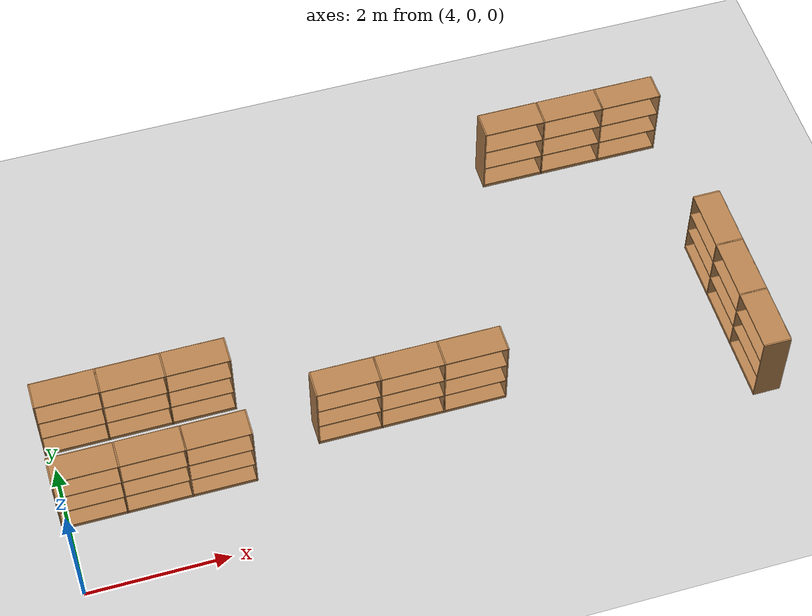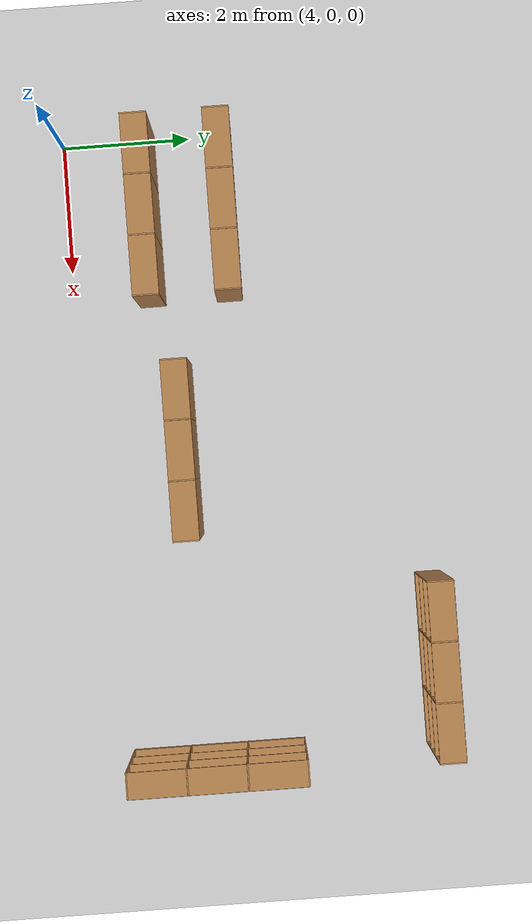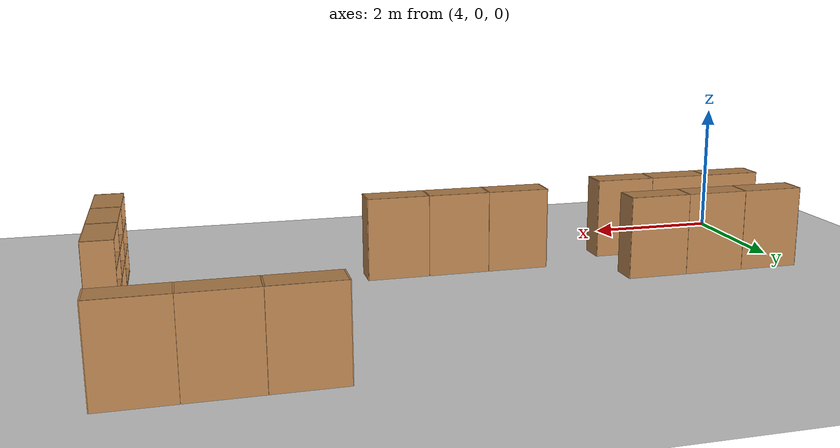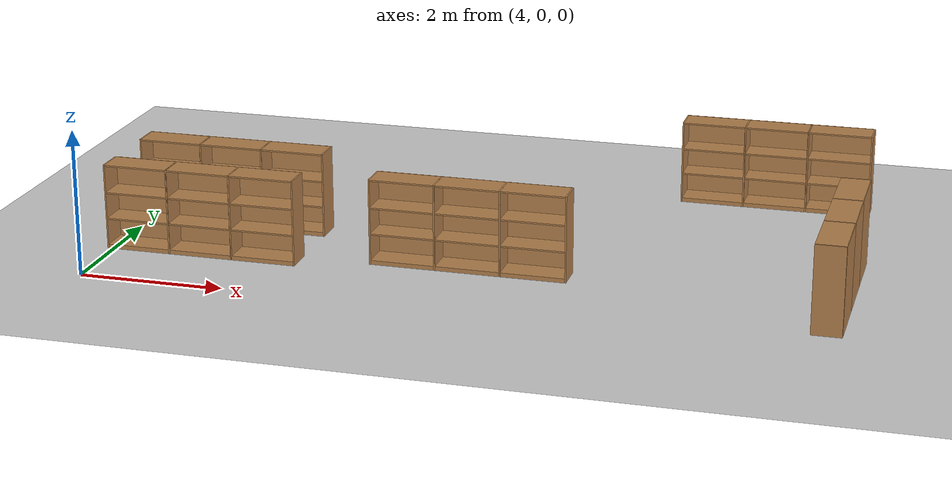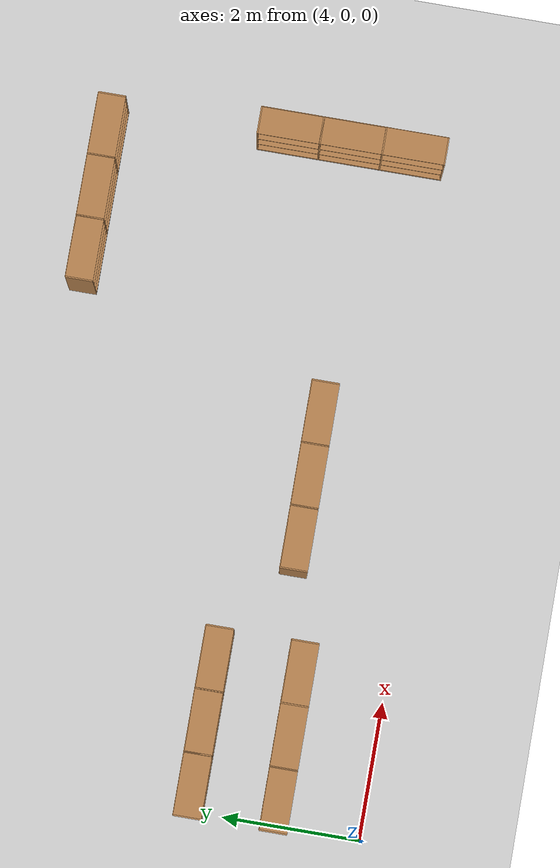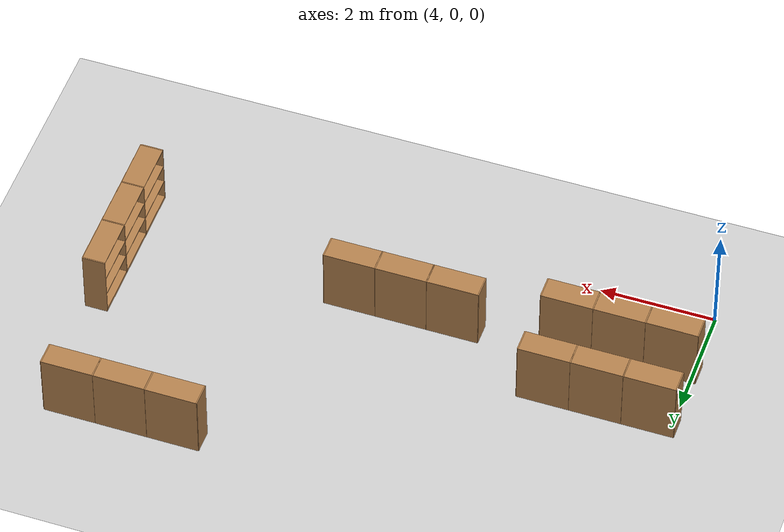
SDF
<sdf version="1.6">
 <world name="default">
  <model name="Bookself-3_0">
   <model name="bookshelf_0">
    <static>1</static>
    <link name="link">
     <inertial><mass>1</mass></inertial>
     <collision name="back">
      <pose>0 0.005 0.6 0 -0 0</pose>
      <geometry><box><size>0.9 0.01 1.2</size></box></geometry>
     </collision>
     <visual name="visual1">
      <pose>0 0.005 0.6 0 -0 0</pose>
      <geometry><box><size>0.9 0.01 1.2</size></box></geometry>
      <material>
       <script><uri>file://media/materials/scripts/gazebo.material</uri><name>Gazebo/Wood</name></script>
      </material>
     </visual>
     <collision name="left_side">
      <pose>0.45 -0.195 0.6 0 -0 0</pose>
      <geometry><box><size>0.02 0.4 1.2</size></box></geometry>
     </collision>
     <visual name="visual2">
      <pose>0.45 -0.195 0.6 0 -0 0</pose>
      <geometry><box><size>0.02 0.4 1.2</size></box></geometry>
      <material>
       <script><uri>file://media/materials/scripts/gazebo.material</uri><name>Gazebo/Wood</name></script>
      </material>
     </visual>
     <collision name="right_side">
      <pose>-0.45 -0.195 0.6 0 -0 0</pose>
      <geometry><box><size>0.02 0.4 1.2</size></box></geometry>
     </collision>
     <visual name="visual3">
      <pose>-0.45 -0.195 0.6 0 -0 0</pose>
      <geometry><box><size>0.02 0.4 1.2</size></box></geometry>
      <material>
       <script><uri>file://media/materials/scripts/gazebo.material</uri><name>Gazebo/Wood</name></script>
      </material>
     </visual>
     <collision name="bottom">
      <pose>0 -0.195 0.03 0 -0 0</pose>
      <geometry><box><size>0.88 0.4 0.06</size></box></geometry>
     </collision>
     <visual name="visual4">
      <pose>0 -0.195 0.03 0 -0 0</pose>
      <geometry><box><size>0.88 0.4 0.06</size></box></geometry>
      <material>
       <script><uri>file://media/materials/scripts/gazebo.material</uri><name>Gazebo/Wood</name></script>
      </material>
     </visual>
     <collision name="top">
      <pose>0 -0.195 1.19 0 -0 0</pose>
      <geometry><box><size>0.88 0.4 0.02</size></box></geometry>
     </collision>
     <visual name="visual5">
      <pose>0 -0.195 1.19 0 -0 0</pose>
      <geometry><box><size>0.88 0.4 0.02</size></box></geometry>
      <material>
       <script><uri>file://media/materials/scripts/gazebo.material</uri><name>Gazebo/Wood</name></script>
      </material>
     </visual>
     <collision name="low_shelf">
      <pose>0 -0.195 0.43 0 -0 0</pose>
      <geometry><box><size>0.88 0.4 0.02</size></box></geometry>
     </collision>
     <visual name="visual6">
      <pose>0 -0.195 0.43 0 -0 0</pose>
      <geometry><box><size>0.88 0.4 0.02</size></box></geometry>
      <material>
       <script><uri>file://media/materials/scripts/gazebo.material</uri><name>Gazebo/Wood</name></script>
      </material>
     </visual>
     <collision name="high_shelf">
      <pose>0 -0.195 0.8 0 -0 0</pose>
      <geometry><box><size>0.88 0.4 0.02</size></box></geometry>
     </collision>
     <visual name="visual7">
      <pose>0 -0.195 0.8 0 -0 0</pose>
      <geometry><box><size>0.88 0.4 0.02</size></box></geometry>
      <material>
       <script><uri>file://media/materials/scripts/gazebo.material</uri><name>Gazebo/Wood</name></script>
      </material>
     </visual>
    </link>
    <pose>-0.903039 0 0 0 -0 0</pose>
   </model>
   <model name="bookshelf_1">
    <static>1</static>
    <link name="link">
     <inertial><mass>1</mass></inertial>
     <collision name="back">
      <pose>0 0.005 0.6 0 -0 0</pose>
      <geometry><box><size>0.9 0.01 1.2</size></box></geometry>
     </collision>
     <visual name="visual1">
      <pose>0 0.005 0.6 0 -0 0</pose>
      <geometry><box><size>0.9 0.01 1.2</size></box></geometry>
      <material>
       <script><uri>file://media/materials/scripts/gazebo.material</uri><name>Gazebo/Wood</name></script>
      </material>
     </visual>
     <collision name="left_side">
      <pose>0.45 -0.195 0.6 0 -0 0</pose>
      <geometry><box><size>0.02 0.4 1.2</size></box></geometry>
     </collision>
     <visual name="visual2">
      <pose>0.45 -0.195 0.6 0 -0 0</pose>
      <geometry><box><size>0.02 0.4 1.2</size></box></geometry>
      <material>
       <script><uri>file://media/materials/scripts/gazebo.material</uri><name>Gazebo/Wood</name></script>
      </material>
     </visual>
     <collision name="right_side">
      <pose>-0.45 -0.195 0.6 0 -0 0</pose>
      <geometry><box><size>0.02 0.4 1.2</size></box></geometry>
     </collision>
     <visual name="visual3">
      <pose>-0.45 -0.195 0.6 0 -0 0</pose>
      <geometry><box><size>0.02 0.4 1.2</size></box></geometry>
      <material>
       <script><uri>file://media/materials/scripts/gazebo.material</uri><name>Gazebo/Wood</name></script>
      </material>
     </visual>
     <collision name="bottom">
      <pose>0 -0.195 0.03 0 -0 0</pose>
      <geometry><box><size>0.88 0.4 0.06</size></box></geometry>
     </collision>
     <visual name="visual4">
      <pose>0 -0.195 0.03 0 -0 0</pose>
      <geometry><box><size>0.88 0.4 0.06</size></box></geometry>
      <material>
       <script><uri>file://media/materials/scripts/gazebo.material</uri><name>Gazebo/Wood</name></script>
      </material>
     </visual>
     <collision name="top">
      <pose>0 -0.195 1.19 0 -0 0</pose>
      <geometry><box><size>0.88 0.4 0.02</size></box></geometry>
     </collision>
     <visual name="visual5">
      <pose>0 -0.195 1.19 0 -0 0</pose>
      <geometry><box><size>0.88 0.4 0.02</size></box></geometry>
      <material>
       <script><uri>file://media/materials/scripts/gazebo.material</uri><name>Gazebo/Wood</name></script>
      </material>
     </visual>
     <collision name="low_shelf">
      <pose>0 -0.195 0.43 0 -0 0</pose>
      <geometry><box><size>0.88 0.4 0.02</size></box></geometry>
     </collision>
     <visual name="visual6">
      <pose>0 -0.195 0.43 0 -0 0</pose>
      <geometry><box><size>0.88 0.4 0.02</size></box></geometry>
      <material>
       <script><uri>file://media/materials/scripts/gazebo.material</uri><name>Gazebo/Wood</name></script>
      </material>
     </visual>
     <collision name="high_shelf">
      <pose>0 -0.195 0.8 0 -0 0</pose>
      <geometry><box><size>0.88 0.4 0.02</size></box></geometry>
     </collision>
     <visual name="visual7">
      <pose>0 -0.195 0.8 0 -0 0</pose>
      <geometry><box><size>0.88 0.4 0.02</size></box></geometry>
      <material>
       <script><uri>file://media/materials/scripts/gazebo.material</uri><name>Gazebo/Wood</name></script>
      </material>
     </visual>
    </link>
    <pose>0.000535 0 0 0 -0 0</pose>
   </model>
   <model name="bookshelf_1_clone">
    <static>1</static>
    <link name="link">
     <inertial><mass>1</mass></inertial>
     <collision name="back">
      <pose>0 0.005 0.6 0 -0 0</pose>
      <geometry><box><size>0.9 0.01 1.2</size></box></geometry>
     </collision>
     <visual name="visual1">
      <pose>0 0.005 0.6 0 -0 0</pose>
      <geometry><box><size>0.9 0.01 1.2</size></box></geometry>
      <material>
       <script><uri>file://media/materials/scripts/gazebo.material</uri><name>Gazebo/Wood</name></script>
      </material>
     </visual>
     <collision name="left_side">
      <pose>0.45 -0.195 0.6 0 -0 0</pose>
      <geometry><box><size>0.02 0.4 1.2</size></box></geometry>
     </collision>
     <visual name="visual2">
      <pose>0.45 -0.195 0.6 0 -0 0</pose>
      <geometry><box><size>0.02 0.4 1.2</size></box></geometry>
      <material>
       <script><uri>file://media/materials/scripts/gazebo.material</uri><name>Gazebo/Wood</name></script>
      </material>
     </visual>
     <collision name="right_side">
      <pose>-0.45 -0.195 0.6 0 -0 0</pose>
      <geometry><box><size>0.02 0.4 1.2</size></box></geometry>
     </collision>
     <visual name="visual3">
      <pose>-0.45 -0.195 0.6 0 -0 0</pose>
      <geometry><box><size>0.02 0.4 1.2</size></box></geometry>
      <material>
       <script><uri>file://media/materials/scripts/gazebo.material</uri><name>Gazebo/Wood</name></script>
      </material>
     </visual>
     <collision name="bottom">
      <pose>0 -0.195 0.03 0 -0 0</pose>
      <geometry><box><size>0.88 0.4 0.06</size></box></geometry>
     </collision>
     <visual name="visual4">
      <pose>0 -0.195 0.03 0 -0 0</pose>
      <geometry><box><size>0.88 0.4 0.06</size></box></geometry>
      <material>
       <script><uri>file://media/materials/scripts/gazebo.material</uri><name>Gazebo/Wood</name></script>
      </material>
     </visual>
     <collision name="top">
      <pose>0 -0.195 1.19 0 -0 0</pose>
      <geometry><box><size>0.88 0.4 0.02</size></box></geometry>
     </collision>
     <visual name="visual5">
      <pose>0 -0.195 1.19 0 -0 0</pose>
      <geometry><box><size>0.88 0.4 0.02</size></box></geometry>
      <material>
       <script><uri>file://media/materials/scripts/gazebo.material</uri><name>Gazebo/Wood</name></script>
      </material>
     </visual>
     <collision name="low_shelf">
      <pose>0 -0.195 0.43 0 -0 0</pose>
      <geometry><box><size>0.88 0.4 0.02</size></box></geometry>
     </collision>
     <visual name="visual6">
      <pose>0 -0.195 0.43 0 -0 0</pose>
      <geometry><box><size>0.88 0.4 0.02</size></box></geometry>
      <material>
       <script><uri>file://media/materials/scripts/gazebo.material</uri><name>Gazebo/Wood</name></script>
      </material>
     </visual>
     <collision name="high_shelf">
      <pose>0 -0.195 0.8 0 -0 0</pose>
      <geometry><box><size>0.88 0.4 0.02</size></box></geometry>
     </collision>
     <visual name="visual7">
      <pose>0 -0.195 0.8 0 -0 0</pose>
      <geometry><box><size>0.88 0.4 0.02</size></box></geometry>
      <material>
       <script><uri>file://media/materials/scripts/gazebo.material</uri><name>Gazebo/Wood</name></script>
      </material>
     </visual>
    </link>
    <pose>0.902502 0 0 0 -0 0</pose>
   </model>
   <static>1</static>
   <pose>5.26653 2.66295 0 0 -0 0</pose>
  </model>
  <model name="Bookself-3_0_clone">
   <model name="bookshelf_0">
    <static>1</static>
    <link name="link">
     <inertial><mass>1</mass></inertial>
     <collision name="back">
      <pose>0 0.005 0.6 0 -0 0</pose>
      <geometry><box><size>0.9 0.01 1.2</size></box></geometry>
     </collision>
     <visual name="visual1">
      <pose>0 0.005 0.6 0 -0 0</pose>
      <geometry><box><size>0.9 0.01 1.2</size></box></geometry>
      <material>
       <script><uri>file://media/materials/scripts/gazebo.material</uri><name>Gazebo/Wood</name></script>
      </material>
     </visual>
     <collision name="left_side">
      <pose>0.45 -0.195 0.6 0 -0 0</pose>
      <geometry><box><size>0.02 0.4 1.2</size></box></geometry>
     </collision>
     <visual name="visual2">
      <pose>0.45 -0.195 0.6 0 -0 0</pose>
      <geometry><box><size>0.02 0.4 1.2</size></box></geometry>
      <material>
       <script><uri>file://media/materials/scripts/gazebo.material</uri><name>Gazebo/Wood</name></script>
      </material>
     </visual>
     <collision name="right_side">
      <pose>-0.45 -0.195 0.6 0 -0 0</pose>
      <geometry><box><size>0.02 0.4 1.2</size></box></geometry>
     </collision>
     <visual name="visual3">
      <pose>-0.45 -0.195 0.6 0 -0 0</pose>
      <geometry><box><size>0.02 0.4 1.2</size></box></geometry>
      <material>
       <script><uri>file://media/materials/scripts/gazebo.material</uri><name>Gazebo/Wood</name></script>
      </material>
     </visual>
     <collision name="bottom">
      <pose>0 -0.195 0.03 0 -0 0</pose>
      <geometry><box><size>0.88 0.4 0.06</size></box></geometry>
     </collision>
     <visual name="visual4">
      <pose>0 -0.195 0.03 0 -0 0</pose>
      <geometry><box><size>0.88 0.4 0.06</size></box></geometry>
      <material>
       <script><uri>file://media/materials/scripts/gazebo.material</uri><name>Gazebo/Wood</name></script>
      </material>
     </visual>
     <collision name="top">
      <pose>0 -0.195 1.19 0 -0 0</pose>
      <geometry><box><size>0.88 0.4 0.02</size></box></geometry>
     </collision>
     <visual name="visual5">
      <pose>0 -0.195 1.19 0 -0 0</pose>
      <geometry><box><size>0.88 0.4 0.02</size></box></geometry>
      <material>
       <script><uri>file://media/materials/scripts/gazebo.material</uri><name>Gazebo/Wood</name></script>
      </material>
     </visual>
     <collision name="low_shelf">
      <pose>0 -0.195 0.43 0 -0 0</pose>
      <geometry><box><size>0.88 0.4 0.02</size></box></geometry>
     </collision>
     <visual name="visual6">
      <pose>0 -0.195 0.43 0 -0 0</pose>
      <geometry><box><size>0.88 0.4 0.02</size></box></geometry>
      <material>
       <script><uri>file://media/materials/scripts/gazebo.material</uri><name>Gazebo/Wood</name></script>
      </material>
     </visual>
     <collision name="high_shelf">
      <pose>0 -0.195 0.8 0 -0 0</pose>
      <geometry><box><size>0.88 0.4 0.02</size></box></geometry>
     </collision>
     <visual name="visual7">
      <pose>0 -0.195 0.8 0 -0 0</pose>
      <geometry><box><size>0.88 0.4 0.02</size></box></geometry>
      <material>
       <script><uri>file://media/materials/scripts/gazebo.material</uri><name>Gazebo/Wood</name></script>
      </material>
     </visual>
    </link>
    <pose>-0.903039 0 0 0 -0 0</pose>
   </model>
   <model name="bookshelf_1">
    <static>1</static>
    <link name="link">
     <inertial><mass>1</mass></inertial>
     <collision name="back">
      <pose>0 0.005 0.6 0 -0 0</pose>
      <geometry><box><size>0.9 0.01 1.2</size></box></geometry>
     </collision>
     <visual name="visual1">
      <pose>0 0.005 0.6 0 -0 0</pose>
      <geometry><box><size>0.9 0.01 1.2</size></box></geometry>
      <material>
       <script><uri>file://media/materials/scripts/gazebo.material</uri><name>Gazebo/Wood</name></script>
      </material>
     </visual>
     <collision name="left_side">
      <pose>0.45 -0.195 0.6 0 -0 0</pose>
      <geometry><box><size>0.02 0.4 1.2</size></box></geometry>
     </collision>
     <visual name="visual2">
      <pose>0.45 -0.195 0.6 0 -0 0</pose>
      <geometry><box><size>0.02 0.4 1.2</size></box></geometry>
      <material>
       <script><uri>file://media/materials/scripts/gazebo.material</uri><name>Gazebo/Wood</name></script>
      </material>
     </visual>
     <collision name="right_side">
      <pose>-0.45 -0.195 0.6 0 -0 0</pose>
      <geometry><box><size>0.02 0.4 1.2</size></box></geometry>
     </collision>
     <visual name="visual3">
      <pose>-0.45 -0.195 0.6 0 -0 0</pose>
      <geometry><box><size>0.02 0.4 1.2</size></box></geometry>
      <material>
       <script><uri>file://media/materials/scripts/gazebo.material</uri><name>Gazebo/Wood</name></script>
      </material>
     </visual>
     <collision name="bottom">
      <pose>0 -0.195 0.03 0 -0 0</pose>
      <geometry><box><size>0.88 0.4 0.06</size></box></geometry>
     </collision>
     <visual name="visual4">
      <pose>0 -0.195 0.03 0 -0 0</pose>
      <geometry><box><size>0.88 0.4 0.06</size></box></geometry>
      <material>
       <script><uri>file://media/materials/scripts/gazebo.material</uri><name>Gazebo/Wood</name></script>
      </material>
     </visual>
     <collision name="top">
      <pose>0 -0.195 1.19 0 -0 0</pose>
      <geometry><box><size>0.88 0.4 0.02</size></box></geometry>
     </collision>
     <visual name="visual5">
      <pose>0 -0.195 1.19 0 -0 0</pose>
      <geometry><box><size>0.88 0.4 0.02</size></box></geometry>
      <material>
       <script><uri>file://media/materials/scripts/gazebo.material</uri><name>Gazebo/Wood</name></script>
      </material>
     </visual>
     <collision name="low_shelf">
      <pose>0 -0.195 0.43 0 -0 0</pose>
      <geometry><box><size>0.88 0.4 0.02</size></box></geometry>
     </collision>
     <visual name="visual6">
      <pose>0 -0.195 0.43 0 -0 0</pose>
      <geometry><box><size>0.88 0.4 0.02</size></box></geometry>
      <material>
       <script><uri>file://media/materials/scripts/gazebo.material</uri><name>Gazebo/Wood</name></script>
      </material>
     </visual>
     <collision name="high_shelf">
      <pose>0 -0.195 0.8 0 -0 0</pose>
      <geometry><box><size>0.88 0.4 0.02</size></box></geometry>
     </collision>
     <visual name="visual7">
      <pose>0 -0.195 0.8 0 -0 0</pose>
      <geometry><box><size>0.88 0.4 0.02</size></box></geometry>
      <material>
       <script><uri>file://media/materials/scripts/gazebo.material</uri><name>Gazebo/Wood</name></script>
      </material>
     </visual>
    </link>
    <pose>0.000535 0 0 0 -0 0</pose>
   </model>
   <model name="bookshelf_1_clone">
    <static>1</static>
    <link name="link">
     <inertial><mass>1</mass></inertial>
     <collision name="back">
      <pose>0 0.005 0.6 0 -0 0</pose>
      <geometry><box><size>0.9 0.01 1.2</size></box></geometry>
     </collision>
     <visual name="visual1">
      <pose>0 0.005 0.6 0 -0 0</pose>
      <geometry><box><size>0.9 0.01 1.2</size></box></geometry>
      <material>
       <script><uri>file://media/materials/scripts/gazebo.material</uri><name>Gazebo/Wood</name></script>
      </material>
     </visual>
     <collision name="left_side">
      <pose>0.45 -0.195 0.6 0 -0 0</pose>
      <geometry><box><size>0.02 0.4 1.2</size></box></geometry>
     </collision>
     <visual name="visual2">
      <pose>0.45 -0.195 0.6 0 -0 0</pose>
      <geometry><box><size>0.02 0.4 1.2</size></box></geometry>
      <material>
       <script><uri>file://media/materials/scripts/gazebo.material</uri><name>Gazebo/Wood</name></script>
      </material>
     </visual>
     <collision name="right_side">
      <pose>-0.45 -0.195 0.6 0 -0 0</pose>
      <geometry><box><size>0.02 0.4 1.2</size></box></geometry>
     </collision>
     <visual name="visual3">
      <pose>-0.45 -0.195 0.6 0 -0 0</pose>
      <geometry><box><size>0.02 0.4 1.2</size></box></geometry>
      <material>
       <script><uri>file://media/materials/scripts/gazebo.material</uri><name>Gazebo/Wood</name></script>
      </material>
     </visual>
     <collision name="bottom">
      <pose>0 -0.195 0.03 0 -0 0</pose>
      <geometry><box><size>0.88 0.4 0.06</size></box></geometry>
     </collision>
     <visual name="visual4">
      <pose>0 -0.195 0.03 0 -0 0</pose>
      <geometry><box><size>0.88 0.4 0.06</size></box></geometry>
      <material>
       <script><uri>file://media/materials/scripts/gazebo.material</uri><name>Gazebo/Wood</name></script>
      </material>
     </visual>
     <collision name="top">
      <pose>0 -0.195 1.19 0 -0 0</pose>
      <geometry><box><size>0.88 0.4 0.02</size></box></geometry>
     </collision>
     <visual name="visual5">
      <pose>0 -0.195 1.19 0 -0 0</pose>
      <geometry><box><size>0.88 0.4 0.02</size></box></geometry>
      <material>
       <script><uri>file://media/materials/scripts/gazebo.material</uri><name>Gazebo/Wood</name></script>
      </material>
     </visual>
     <collision name="low_shelf">
      <pose>0 -0.195 0.43 0 -0 0</pose>
      <geometry><box><size>0.88 0.4 0.02</size></box></geometry>
     </collision>
     <visual name="visual6">
      <pose>0 -0.195 0.43 0 -0 0</pose>
      <geometry><box><size>0.88 0.4 0.02</size></box></geometry>
      <material>
       <script><uri>file://media/materials/scripts/gazebo.material</uri><name>Gazebo/Wood</name></script>
      </material>
     </visual>
     <collision name="high_shelf">
      <pose>0 -0.195 0.8 0 -0 0</pose>
      <geometry><box><size>0.88 0.4 0.02</size></box></geometry>
     </collision>
     <visual name="visual7">
      <pose>0 -0.195 0.8 0 -0 0</pose>
      <geometry><box><size>0.88 0.4 0.02</size></box></geometry>
      <material>
       <script><uri>file://media/materials/scripts/gazebo.material</uri><name>Gazebo/Wood</name></script>
      </material>
     </visual>
    </link>
    <pose>0.902502 0 0 0 -0 0</pose>
   </model>
   <static>1</static>
   <pose>5.26653 1.44201 0 0 -0 0</pose>
  </model>
  <model name="Bookself-3_0_clone_8">
   <model name="bookshelf_0">
    <static>1</static>
    <link name="link">
     <inertial><mass>1</mass></inertial>
     <collision name="back">
      <pose>0 0.005 0.6 0 -0 0</pose>
      <geometry><box><size>0.9 0.01 1.2</size></box></geometry>
     </collision>
     <visual name="visual1">
      <pose>0 0.005 0.6 0 -0 0</pose>
      <geometry><box><size>0.9 0.01 1.2</size></box></geometry>
      <material>
       <script><uri>file://media/materials/scripts/gazebo.material</uri><name>Gazebo/Wood</name></script>
      </material>
     </visual>
     <collision name="left_side">
      <pose>0.45 -0.195 0.6 0 -0 0</pose>
      <geometry><box><size>0.02 0.4 1.2</size></box></geometry>
     </collision>
     <visual name="visual2">
      <pose>0.45 -0.195 0.6 0 -0 0</pose>
      <geometry><box><size>0.02 0.4 1.2</size></box></geometry>
      <material>
       <script><uri>file://media/materials/scripts/gazebo.material</uri><name>Gazebo/Wood</name></script>
      </material>
     </visual>
     <collision name="right_side">
      <pose>-0.45 -0.195 0.6 0 -0 0</pose>
      <geometry><box><size>0.02 0.4 1.2</size></box></geometry>
     </collision>
     <visual name="visual3">
      <pose>-0.45 -0.195 0.6 0 -0 0</pose>
      <geometry><box><size>0.02 0.4 1.2</size></box></geometry>
      <material>
       <script><uri>file://media/materials/scripts/gazebo.material</uri><name>Gazebo/Wood</name></script>
      </material>
     </visual>
     <collision name="bottom">
      <pose>0 -0.195 0.03 0 -0 0</pose>
      <geometry><box><size>0.88 0.4 0.06</size></box></geometry>
     </collision>
     <visual name="visual4">
      <pose>0 -0.195 0.03 0 -0 0</pose>
      <geometry><box><size>0.88 0.4 0.06</size></box></geometry>
      <material>
       <script><uri>file://media/materials/scripts/gazebo.material</uri><name>Gazebo/Wood</name></script>
      </material>
     </visual>
     <collision name="top">
      <pose>0 -0.195 1.19 0 -0 0</pose>
      <geometry><box><size>0.88 0.4 0.02</size></box></geometry>
     </collision>
     <visual name="visual5">
      <pose>0 -0.195 1.19 0 -0 0</pose>
      <geometry><box><size>0.88 0.4 0.02</size></box></geometry>
      <material>
       <script><uri>file://media/materials/scripts/gazebo.material</uri><name>Gazebo/Wood</name></script>
      </material>
     </visual>
     <collision name="low_shelf">
      <pose>0 -0.195 0.43 0 -0 0</pose>
      <geometry><box><size>0.88 0.4 0.02</size></box></geometry>
     </collision>
     <visual name="visual6">
      <pose>0 -0.195 0.43 0 -0 0</pose>
      <geometry><box><size>0.88 0.4 0.02</size></box></geometry>
      <material>
       <script><uri>file://media/materials/scripts/gazebo.material</uri><name>Gazebo/Wood</name></script>
      </material>
     </visual>
     <collision name="high_shelf">
      <pose>0 -0.195 0.8 0 -0 0</pose>
      <geometry><box><size>0.88 0.4 0.02</size></box></geometry>
     </collision>
     <visual name="visual7">
      <pose>0 -0.195 0.8 0 -0 0</pose>
      <geometry><box><size>0.88 0.4 0.02</size></box></geometry>
      <material>
       <script><uri>file://media/materials/scripts/gazebo.material</uri><name>Gazebo/Wood</name></script>
      </material>
     </visual>
    </link>
    <pose>-0.903039 0 0 0 -0 0</pose>
   </model>
   <model name="bookshelf_1">
    <static>1</static>
    <link name="link">
     <inertial><mass>1</mass></inertial>
     <collision name="back">
      <pose>0 0.005 0.6 0 -0 0</pose>
      <geometry><box><size>0.9 0.01 1.2</size></box></geometry>
     </collision>
     <visual name="visual1">
      <pose>0 0.005 0.6 0 -0 0</pose>
      <geometry><box><size>0.9 0.01 1.2</size></box></geometry>
      <material>
       <script><uri>file://media/materials/scripts/gazebo.material</uri><name>Gazebo/Wood</name></script>
      </material>
     </visual>
     <collision name="left_side">
      <pose>0.45 -0.195 0.6 0 -0 0</pose>
      <geometry><box><size>0.02 0.4 1.2</size></box></geometry>
     </collision>
     <visual name="visual2">
      <pose>0.45 -0.195 0.6 0 -0 0</pose>
      <geometry><box><size>0.02 0.4 1.2</size></box></geometry>
      <material>
       <script><uri>file://media/materials/scripts/gazebo.material</uri><name>Gazebo/Wood</name></script>
      </material>
     </visual>
     <collision name="right_side">
      <pose>-0.45 -0.195 0.6 0 -0 0</pose>
      <geometry><box><size>0.02 0.4 1.2</size></box></geometry>
     </collision>
     <visual name="visual3">
      <pose>-0.45 -0.195 0.6 0 -0 0</pose>
      <geometry><box><size>0.02 0.4 1.2</size></box></geometry>
      <material>
       <script><uri>file://media/materials/scripts/gazebo.material</uri><name>Gazebo/Wood</name></script>
      </material>
     </visual>
     <collision name="bottom">
      <pose>0 -0.195 0.03 0 -0 0</pose>
      <geometry><box><size>0.88 0.4 0.06</size></box></geometry>
     </collision>
     <visual name="visual4">
      <pose>0 -0.195 0.03 0 -0 0</pose>
      <geometry><box><size>0.88 0.4 0.06</size></box></geometry>
      <material>
       <script><uri>file://media/materials/scripts/gazebo.material</uri><name>Gazebo/Wood</name></script>
      </material>
     </visual>
     <collision name="top">
      <pose>0 -0.195 1.19 0 -0 0</pose>
      <geometry><box><size>0.88 0.4 0.02</size></box></geometry>
     </collision>
     <visual name="visual5">
      <pose>0 -0.195 1.19 0 -0 0</pose>
      <geometry><box><size>0.88 0.4 0.02</size></box></geometry>
      <material>
       <script><uri>file://media/materials/scripts/gazebo.material</uri><name>Gazebo/Wood</name></script>
      </material>
     </visual>
     <collision name="low_shelf">
      <pose>0 -0.195 0.43 0 -0 0</pose>
      <geometry><box><size>0.88 0.4 0.02</size></box></geometry>
     </collision>
     <visual name="visual6">
      <pose>0 -0.195 0.43 0 -0 0</pose>
      <geometry><box><size>0.88 0.4 0.02</size></box></geometry>
      <material>
       <script><uri>file://media/materials/scripts/gazebo.material</uri><name>Gazebo/Wood</name></script>
      </material>
     </visual>
     <collision name="high_shelf">
      <pose>0 -0.195 0.8 0 -0 0</pose>
      <geometry><box><size>0.88 0.4 0.02</size></box></geometry>
     </collision>
     <visual name="visual7">
      <pose>0 -0.195 0.8 0 -0 0</pose>
      <geometry><box><size>0.88 0.4 0.02</size></box></geometry>
      <material>
       <script><uri>file://media/materials/scripts/gazebo.material</uri><name>Gazebo/Wood</name></script>
      </material>
     </visual>
    </link>
    <pose>0.000535 0 0 0 -0 0</pose>
   </model>
   <model name="bookshelf_1_clone">
    <static>1</static>
    <link name="link">
     <inertial><mass>1</mass></inertial>
     <collision name="back">
      <pose>0 0.005 0.6 0 -0 0</pose>
      <geometry><box><size>0.9 0.01 1.2</size></box></geometry>
     </collision>
     <visual name="visual1">
      <pose>0 0.005 0.6 0 -0 0</pose>
      <geometry><box><size>0.9 0.01 1.2</size></box></geometry>
      <material>
       <script><uri>file://media/materials/scripts/gazebo.material</uri><name>Gazebo/Wood</name></script>
      </material>
     </visual>
     <collision name="left_side">
      <pose>0.45 -0.195 0.6 0 -0 0</pose>
      <geometry><box><size>0.02 0.4 1.2</size></box></geometry>
     </collision>
     <visual name="visual2">
      <pose>0.45 -0.195 0.6 0 -0 0</pose>
      <geometry><box><size>0.02 0.4 1.2</size></box></geometry>
      <material>
       <script><uri>file://media/materials/scripts/gazebo.material</uri><name>Gazebo/Wood</name></script>
      </material>
     </visual>
     <collision name="right_side">
      <pose>-0.45 -0.195 0.6 0 -0 0</pose>
      <geometry><box><size>0.02 0.4 1.2</size></box></geometry>
     </collision>
     <visual name="visual3">
      <pose>-0.45 -0.195 0.6 0 -0 0</pose>
      <geometry><box><size>0.02 0.4 1.2</size></box></geometry>
      <material>
       <script><uri>file://media/materials/scripts/gazebo.material</uri><name>Gazebo/Wood</name></script>
      </material>
     </visual>
     <collision name="bottom">
      <pose>0 -0.195 0.03 0 -0 0</pose>
      <geometry><box><size>0.88 0.4 0.06</size></box></geometry>
     </collision>
     <visual name="visual4">
      <pose>0 -0.195 0.03 0 -0 0</pose>
      <geometry><box><size>0.88 0.4 0.06</size></box></geometry>
      <material>
       <script><uri>file://media/materials/scripts/gazebo.material</uri><name>Gazebo/Wood</name></script>
      </material>
     </visual>
     <collision name="top">
      <pose>0 -0.195 1.19 0 -0 0</pose>
      <geometry><box><size>0.88 0.4 0.02</size></box></geometry>
     </collision>
     <visual name="visual5">
      <pose>0 -0.195 1.19 0 -0 0</pose>
      <geometry><box><size>0.88 0.4 0.02</size></box></geometry>
      <material>
       <script><uri>file://media/materials/scripts/gazebo.material</uri><name>Gazebo/Wood</name></script>
      </material>
     </visual>
     <collision name="low_shelf">
      <pose>0 -0.195 0.43 0 -0 0</pose>
      <geometry><box><size>0.88 0.4 0.02</size></box></geometry>
     </collision>
     <visual name="visual6">
      <pose>0 -0.195 0.43 0 -0 0</pose>
      <geometry><box><size>0.88 0.4 0.02</size></box></geometry>
      <material>
       <script><uri>file://media/materials/scripts/gazebo.material</uri><name>Gazebo/Wood</name></script>
      </material>
     </visual>
     <collision name="high_shelf">
      <pose>0 -0.195 0.8 0 -0 0</pose>
      <geometry><box><size>0.88 0.4 0.02</size></box></geometry>
     </collision>
     <visual name="visual7">
      <pose>0 -0.195 0.8 0 -0 0</pose>
      <geometry><box><size>0.88 0.4 0.02</size></box></geometry>
      <material>
       <script><uri>file://media/materials/scripts/gazebo.material</uri><name>Gazebo/Wood</name></script>
      </material>
     </visual>
    </link>
    <pose>0.902502 0 0 0 -0 0</pose>
   </model>
   <static>1</static>
   <pose>8.94287 1.77602 0 0 -0 0</pose>
  </model>
  <model name="Bookself-3_0_clone_5_clone_1">
   <model name="bookshelf_0">
    <static>1</static>
    <link name="link">
     <inertial><mass>1</mass></inertial>
     <collision name="back">
      <pose>0 0.005 0.6 0 -0 0</pose>
      <geometry><box><size>0.9 0.01 1.2</size></box></geometry>
     </collision>
     <visual name="visual1">
      <pose>0 0.005 0.6 0 -0 0</pose>
      <geometry><box><size>0.9 0.01 1.2</size></box></geometry>
      <material>
       <script><uri>file://media/materials/scripts/gazebo.material</uri><name>Gazebo/Wood</name></script>
      </material>
     </visual>
     <collision name="left_side">
      <pose>0.45 -0.195 0.6 0 -0 0</pose>
      <geometry><box><size>0.02 0.4 1.2</size></box></geometry>
     </collision>
     <visual name="visual2">
      <pose>0.45 -0.195 0.6 0 -0 0</pose>
      <geometry><box><size>0.02 0.4 1.2</size></box></geometry>
      <material>
       <script><uri>file://media/materials/scripts/gazebo.material</uri><name>Gazebo/Wood</name></script>
      </material>
     </visual>
     <collision name="right_side">
      <pose>-0.45 -0.195 0.6 0 -0 0</pose>
      <geometry><box><size>0.02 0.4 1.2</size></box></geometry>
     </collision>
     <visual name="visual3">
      <pose>-0.45 -0.195 0.6 0 -0 0</pose>
      <geometry><box><size>0.02 0.4 1.2</size></box></geometry>
      <material>
       <script><uri>file://media/materials/scripts/gazebo.material</uri><name>Gazebo/Wood</name></script>
      </material>
     </visual>
     <collision name="bottom">
      <pose>0 -0.195 0.03 0 -0 0</pose>
      <geometry><box><size>0.88 0.4 0.06</size></box></geometry>
     </collision>
     <visual name="visual4">
      <pose>0 -0.195 0.03 0 -0 0</pose>
      <geometry><box><size>0.88 0.4 0.06</size></box></geometry>
      <material>
       <script><uri>file://media/materials/scripts/gazebo.material</uri><name>Gazebo/Wood</name></script>
      </material>
     </visual>
     <collision name="top">
      <pose>0 -0.195 1.19 0 -0 0</pose>
      <geometry><box><size>0.88 0.4 0.02</size></box></geometry>
     </collision>
     <visual name="visual5">
      <pose>0 -0.195 1.19 0 -0 0</pose>
      <geometry><box><size>0.88 0.4 0.02</size></box></geometry>
      <material>
       <script><uri>file://media/materials/scripts/gazebo.material</uri><name>Gazebo/Wood</name></script>
      </material>
     </visual>
     <collision name="low_shelf">
      <pose>0 -0.195 0.43 0 -0 0</pose>
      <geometry><box><size>0.88 0.4 0.02</size></box></geometry>
     </collision>
     <visual name="visual6">
      <pose>0 -0.195 0.43 0 -0 0</pose>
      <geometry><box><size>0.88 0.4 0.02</size></box></geometry>
      <material>
       <script><uri>file://media/materials/scripts/gazebo.material</uri><name>Gazebo/Wood</name></script>
      </material>
     </visual>
     <collision name="high_shelf">
      <pose>0 -0.195 0.8 0 -0 0</pose>
      <geometry><box><size>0.88 0.4 0.02</size></box></geometry>
     </collision>
     <visual name="visual7">
      <pose>0 -0.195 0.8 0 -0 0</pose>
      <geometry><box><size>0.88 0.4 0.02</size></box></geometry>
      <material>
       <script><uri>file://media/materials/scripts/gazebo.material</uri><name>Gazebo/Wood</name></script>
      </material>
     </visual>
    </link>
    <pose>-0.903039 0 0 0 -0 0</pose>
   </model>
   <model name="bookshelf_1">
    <static>1</static>
    <link name="link">
     <inertial><mass>1</mass></inertial>
     <collision name="back">
      <pose>0 0.005 0.6 0 -0 0</pose>
      <geometry><box><size>0.9 0.01 1.2</size></box></geometry>
     </collision>
     <visual name="visual1">
      <pose>0 0.005 0.6 0 -0 0</pose>
      <geometry><box><size>0.9 0.01 1.2</size></box></geometry>
      <material>
       <script><uri>file://media/materials/scripts/gazebo.material</uri><name>Gazebo/Wood</name></script>
      </material>
     </visual>
     <collision name="left_side">
      <pose>0.45 -0.195 0.6 0 -0 0</pose>
      <geometry><box><size>0.02 0.4 1.2</size></box></geometry>
     </collision>
     <visual name="visual2">
      <pose>0.45 -0.195 0.6 0 -0 0</pose>
      <geometry><box><size>0.02 0.4 1.2</size></box></geometry>
      <material>
       <script><uri>file://media/materials/scripts/gazebo.material</uri><name>Gazebo/Wood</name></script>
      </material>
     </visual>
     <collision name="right_side">
      <pose>-0.45 -0.195 0.6 0 -0 0</pose>
      <geometry><box><size>0.02 0.4 1.2</size></box></geometry>
     </collision>
     <visual name="visual3">
      <pose>-0.45 -0.195 0.6 0 -0 0</pose>
      <geometry><box><size>0.02 0.4 1.2</size></box></geometry>
      <material>
       <script><uri>file://media/materials/scripts/gazebo.material</uri><name>Gazebo/Wood</name></script>
      </material>
     </visual>
     <collision name="bottom">
      <pose>0 -0.195 0.03 0 -0 0</pose>
      <geometry><box><size>0.88 0.4 0.06</size></box></geometry>
     </collision>
     <visual name="visual4">
      <pose>0 -0.195 0.03 0 -0 0</pose>
      <geometry><box><size>0.88 0.4 0.06</size></box></geometry>
      <material>
       <script><uri>file://media/materials/scripts/gazebo.material</uri><name>Gazebo/Wood</name></script>
      </material>
     </visual>
     <collision name="top">
      <pose>0 -0.195 1.19 0 -0 0</pose>
      <geometry><box><size>0.88 0.4 0.02</size></box></geometry>
     </collision>
     <visual name="visual5">
      <pose>0 -0.195 1.19 0 -0 0</pose>
      <geometry><box><size>0.88 0.4 0.02</size></box></geometry>
      <material>
       <script><uri>file://media/materials/scripts/gazebo.material</uri><name>Gazebo/Wood</name></script>
      </material>
     </visual>
     <collision name="low_shelf">
      <pose>0 -0.195 0.43 0 -0 0</pose>
      <geometry><box><size>0.88 0.4 0.02</size></box></geometry>
     </collision>
     <visual name="visual6">
      <pose>0 -0.195 0.43 0 -0 0</pose>
      <geometry><box><size>0.88 0.4 0.02</size></box></geometry>
      <material>
       <script><uri>file://media/materials/scripts/gazebo.material</uri><name>Gazebo/Wood</name></script>
      </material>
     </visual>
     <collision name="high_shelf">
      <pose>0 -0.195 0.8 0 -0 0</pose>
      <geometry><box><size>0.88 0.4 0.02</size></box></geometry>
     </collision>
     <visual name="visual7">
      <pose>0 -0.195 0.8 0 -0 0</pose>
      <geometry><box><size>0.88 0.4 0.02</size></box></geometry>
      <material>
       <script><uri>file://media/materials/scripts/gazebo.material</uri><name>Gazebo/Wood</name></script>
      </material>
     </visual>
    </link>
    <pose>0.000535 0 0 0 -0 0</pose>
   </model>
   <model name="bookshelf_1_clone">
    <static>1</static>
    <link name="link">
     <inertial><mass>1</mass></inertial>
     <collision name="back">
      <pose>0 0.005 0.6 0 -0 0</pose>
      <geometry><box><size>0.9 0.01 1.2</size></box></geometry>
     </collision>
     <visual name="visual1">
      <pose>0 0.005 0.6 0 -0 0</pose>
      <geometry><box><size>0.9 0.01 1.2</size></box></geometry>
      <material>
       <script><uri>file://media/materials/scripts/gazebo.material</uri><name>Gazebo/Wood</name></script>
      </material>
     </visual>
     <collision name="left_side">
      <pose>0.45 -0.195 0.6 0 -0 0</pose>
      <geometry><box><size>0.02 0.4 1.2</size></box></geometry>
     </collision>
     <visual name="visual2">
      <pose>0.45 -0.195 0.6 0 -0 0</pose>
      <geometry><box><size>0.02 0.4 1.2</size></box></geometry>
      <material>
       <script><uri>file://media/materials/scripts/gazebo.material</uri><name>Gazebo/Wood</name></script>
      </material>
     </visual>
     <collision name="right_side">
      <pose>-0.45 -0.195 0.6 0 -0 0</pose>
      <geometry><box><size>0.02 0.4 1.2</size></box></geometry>
     </collision>
     <visual name="visual3">
      <pose>-0.45 -0.195 0.6 0 -0 0</pose>
      <geometry><box><size>0.02 0.4 1.2</size></box></geometry>
      <material>
       <script><uri>file://media/materials/scripts/gazebo.material</uri><name>Gazebo/Wood</name></script>
      </material>
     </visual>
     <collision name="bottom">
      <pose>0 -0.195 0.03 0 -0 0</pose>
      <geometry><box><size>0.88 0.4 0.06</size></box></geometry>
     </collision>
     <visual name="visual4">
      <pose>0 -0.195 0.03 0 -0 0</pose>
      <geometry><box><size>0.88 0.4 0.06</size></box></geometry>
      <material>
       <script><uri>file://media/materials/scripts/gazebo.material</uri><name>Gazebo/Wood</name></script>
      </material>
     </visual>
     <collision name="top">
      <pose>0 -0.195 1.19 0 -0 0</pose>
      <geometry><box><size>0.88 0.4 0.02</size></box></geometry>
     </collision>
     <visual name="visual5">
      <pose>0 -0.195 1.19 0 -0 0</pose>
      <geometry><box><size>0.88 0.4 0.02</size></box></geometry>
      <material>
       <script><uri>file://media/materials/scripts/gazebo.material</uri><name>Gazebo/Wood</name></script>
      </material>
     </visual>
     <collision name="low_shelf">
      <pose>0 -0.195 0.43 0 -0 0</pose>
      <geometry><box><size>0.88 0.4 0.02</size></box></geometry>
     </collision>
     <visual name="visual6">
      <pose>0 -0.195 0.43 0 -0 0</pose>
      <geometry><box><size>0.88 0.4 0.02</size></box></geometry>
      <material>
       <script><uri>file://media/materials/scripts/gazebo.material</uri><name>Gazebo/Wood</name></script>
      </material>
     </visual>
     <collision name="high_shelf">
      <pose>0 -0.195 0.8 0 -0 0</pose>
      <geometry><box><size>0.88 0.4 0.02</size></box></geometry>
     </collision>
     <visual name="visual7">
      <pose>0 -0.195 0.8 0 -0 0</pose>
      <geometry><box><size>0.88 0.4 0.02</size></box></geometry>
      <material>
       <script><uri>file://media/materials/scripts/gazebo.material</uri><name>Gazebo/Wood</name></script>
      </material>
     </visual>
    </link>
    <pose>0.902502 0 0 0 -0 0</pose>
   </model>
   <static>1</static>
   <pose>12.5055 5.47921 0 0 -0 0</pose>
  </model>
  <model name="Bookself-3_0_clone_5_clone_1_clone">
   <model name="bookshelf_0">
    <static>1</static>
    <link name="link">
     <inertial><mass>1</mass></inertial>
     <collision name="back">
      <pose>0 0.005 0.6 0 -0 0</pose>
      <geometry><box><size>0.9 0.01 1.2</size></box></geometry>
     </collision>
     <visual name="visual1">
      <pose>0 0.005 0.6 0 -0 0</pose>
      <geometry><box><size>0.9 0.01 1.2</size></box></geometry>
      <material>
       <script><uri>file://media/materials/scripts/gazebo.material</uri><name>Gazebo/Wood</name></script>
      </material>
     </visual>
     <collision name="left_side">
      <pose>0.45 -0.195 0.6 0 -0 0</pose>
      <geometry><box><size>0.02 0.4 1.2</size></box></geometry>
     </collision>
     <visual name="visual2">
      <pose>0.45 -0.195 0.6 0 -0 0</pose>
      <geometry><box><size>0.02 0.4 1.2</size></box></geometry>
      <material>
       <script><uri>file://media/materials/scripts/gazebo.material</uri><name>Gazebo/Wood</name></script>
      </material>
     </visual>
     <collision name="right_side">
      <pose>-0.45 -0.195 0.6 0 -0 0</pose>
      <geometry><box><size>0.02 0.4 1.2</size></box></geometry>
     </collision>
     <visual name="visual3">
      <pose>-0.45 -0.195 0.6 0 -0 0</pose>
      <geometry><box><size>0.02 0.4 1.2</size></box></geometry>
      <material>
       <script><uri>file://media/materials/scripts/gazebo.material</uri><name>Gazebo/Wood</name></script>
      </material>
     </visual>
     <collision name="bottom">
      <pose>0 -0.195 0.03 0 -0 0</pose>
      <geometry><box><size>0.88 0.4 0.06</size></box></geometry>
     </collision>
     <visual name="visual4">
      <pose>0 -0.195 0.03 0 -0 0</pose>
      <geometry><box><size>0.88 0.4 0.06</size></box></geometry>
      <material>
       <script><uri>file://media/materials/scripts/gazebo.material</uri><name>Gazebo/Wood</name></script>
      </material>
     </visual>
     <collision name="top">
      <pose>0 -0.195 1.19 0 -0 0</pose>
      <geometry><box><size>0.88 0.4 0.02</size></box></geometry>
     </collision>
     <visual name="visual5">
      <pose>0 -0.195 1.19 0 -0 0</pose>
      <geometry><box><size>0.88 0.4 0.02</size></box></geometry>
      <material>
       <script><uri>file://media/materials/scripts/gazebo.material</uri><name>Gazebo/Wood</name></script>
      </material>
     </visual>
     <collision name="low_shelf">
      <pose>0 -0.195 0.43 0 -0 0</pose>
      <geometry><box><size>0.88 0.4 0.02</size></box></geometry>
     </collision>
     <visual name="visual6">
      <pose>0 -0.195 0.43 0 -0 0</pose>
      <geometry><box><size>0.88 0.4 0.02</size></box></geometry>
      <material>
       <script><uri>file://media/materials/scripts/gazebo.material</uri><name>Gazebo/Wood</name></script>
      </material>
     </visual>
     <collision name="high_shelf">
      <pose>0 -0.195 0.8 0 -0 0</pose>
      <geometry><box><size>0.88 0.4 0.02</size></box></geometry>
     </collision>
     <visual name="visual7">
      <pose>0 -0.195 0.8 0 -0 0</pose>
      <geometry><box><size>0.88 0.4 0.02</size></box></geometry>
      <material>
       <script><uri>file://media/materials/scripts/gazebo.material</uri><name>Gazebo/Wood</name></script>
      </material>
     </visual>
    </link>
    <pose>-0.903039 0 0 0 -0 0</pose>
   </model>
   <model name="bookshelf_1">
    <static>1</static>
    <link name="link">
     <inertial><mass>1</mass></inertial>
     <collision name="back">
      <pose>0 0.005 0.6 0 -0 0</pose>
      <geometry><box><size>0.9 0.01 1.2</size></box></geometry>
     </collision>
     <visual name="visual1">
      <pose>0 0.005 0.6 0 -0 0</pose>
      <geometry><box><size>0.9 0.01 1.2</size></box></geometry>
      <material>
       <script><uri>file://media/materials/scripts/gazebo.material</uri><name>Gazebo/Wood</name></script>
      </material>
     </visual>
     <collision name="left_side">
      <pose>0.45 -0.195 0.6 0 -0 0</pose>
      <geometry><box><size>0.02 0.4 1.2</size></box></geometry>
     </collision>
     <visual name="visual2">
      <pose>0.45 -0.195 0.6 0 -0 0</pose>
      <geometry><box><size>0.02 0.4 1.2</size></box></geometry>
      <material>
       <script><uri>file://media/materials/scripts/gazebo.material</uri><name>Gazebo/Wood</name></script>
      </material>
     </visual>
     <collision name="right_side">
      <pose>-0.45 -0.195 0.6 0 -0 0</pose>
      <geometry><box><size>0.02 0.4 1.2</size></box></geometry>
     </collision>
     <visual name="visual3">
      <pose>-0.45 -0.195 0.6 0 -0 0</pose>
      <geometry><box><size>0.02 0.4 1.2</size></box></geometry>
      <material>
       <script><uri>file://media/materials/scripts/gazebo.material</uri><name>Gazebo/Wood</name></script>
      </material>
     </visual>
     <collision name="bottom">
      <pose>0 -0.195 0.03 0 -0 0</pose>
      <geometry><box><size>0.88 0.4 0.06</size></box></geometry>
     </collision>
     <visual name="visual4">
      <pose>0 -0.195 0.03 0 -0 0</pose>
      <geometry><box><size>0.88 0.4 0.06</size></box></geometry>
      <material>
       <script><uri>file://media/materials/scripts/gazebo.material</uri><name>Gazebo/Wood</name></script>
      </material>
     </visual>
     <collision name="top">
      <pose>0 -0.195 1.19 0 -0 0</pose>
      <geometry><box><size>0.88 0.4 0.02</size></box></geometry>
     </collision>
     <visual name="visual5">
      <pose>0 -0.195 1.19 0 -0 0</pose>
      <geometry><box><size>0.88 0.4 0.02</size></box></geometry>
      <material>
       <script><uri>file://media/materials/scripts/gazebo.material</uri><name>Gazebo/Wood</name></script>
      </material>
     </visual>
     <collision name="low_shelf">
      <pose>0 -0.195 0.43 0 -0 0</pose>
      <geometry><box><size>0.88 0.4 0.02</size></box></geometry>
     </collision>
     <visual name="visual6">
      <pose>0 -0.195 0.43 0 -0 0</pose>
      <geometry><box><size>0.88 0.4 0.02</size></box></geometry>
      <material>
       <script><uri>file://media/materials/scripts/gazebo.material</uri><name>Gazebo/Wood</name></script>
      </material>
     </visual>
     <collision name="high_shelf">
      <pose>0 -0.195 0.8 0 -0 0</pose>
      <geometry><box><size>0.88 0.4 0.02</size></box></geometry>
     </collision>
     <visual name="visual7">
      <pose>0 -0.195 0.8 0 -0 0</pose>
      <geometry><box><size>0.88 0.4 0.02</size></box></geometry>
      <material>
       <script><uri>file://media/materials/scripts/gazebo.material</uri><name>Gazebo/Wood</name></script>
      </material>
     </visual>
    </link>
    <pose>0.000535 0 0 0 -0 0</pose>
   </model>
   <model name="bookshelf_1_clone">
    <static>1</static>
    <link name="link">
     <inertial><mass>1</mass></inertial>
     <collision name="back">
      <pose>0 0.005 0.6 0 -0 0</pose>
      <geometry><box><size>0.9 0.01 1.2</size></box></geometry>
     </collision>
     <visual name="visual1">
      <pose>0 0.005 0.6 0 -0 0</pose>
      <geometry><box><size>0.9 0.01 1.2</size></box></geometry>
      <material>
       <script><uri>file://media/materials/scripts/gazebo.material</uri><name>Gazebo/Wood</name></script>
      </material>
     </visual>
     <collision name="left_side">
      <pose>0.45 -0.195 0.6 0 -0 0</pose>
      <geometry><box><size>0.02 0.4 1.2</size></box></geometry>
     </collision>
     <visual name="visual2">
      <pose>0.45 -0.195 0.6 0 -0 0</pose>
      <geometry><box><size>0.02 0.4 1.2</size></box></geometry>
      <material>
       <script><uri>file://media/materials/scripts/gazebo.material</uri><name>Gazebo/Wood</name></script>
      </material>
     </visual>
     <collision name="right_side">
      <pose>-0.45 -0.195 0.6 0 -0 0</pose>
      <geometry><box><size>0.02 0.4 1.2</size></box></geometry>
     </collision>
     <visual name="visual3">
      <pose>-0.45 -0.195 0.6 0 -0 0</pose>
      <geometry><box><size>0.02 0.4 1.2</size></box></geometry>
      <material>
       <script><uri>file://media/materials/scripts/gazebo.material</uri><name>Gazebo/Wood</name></script>
      </material>
     </visual>
     <collision name="bottom">
      <pose>0 -0.195 0.03 0 -0 0</pose>
      <geometry><box><size>0.88 0.4 0.06</size></box></geometry>
     </collision>
     <visual name="visual4">
      <pose>0 -0.195 0.03 0 -0 0</pose>
      <geometry><box><size>0.88 0.4 0.06</size></box></geometry>
      <material>
       <script><uri>file://media/materials/scripts/gazebo.material</uri><name>Gazebo/Wood</name></script>
      </material>
     </visual>
     <collision name="top">
      <pose>0 -0.195 1.19 0 -0 0</pose>
      <geometry><box><size>0.88 0.4 0.02</size></box></geometry>
     </collision>
     <visual name="visual5">
      <pose>0 -0.195 1.19 0 -0 0</pose>
      <geometry><box><size>0.88 0.4 0.02</size></box></geometry>
      <material>
       <script><uri>file://media/materials/scripts/gazebo.material</uri><name>Gazebo/Wood</name></script>
      </material>
     </visual>
     <collision name="low_shelf">
      <pose>0 -0.195 0.43 0 -0 0</pose>
      <geometry><box><size>0.88 0.4 0.02</size></box></geometry>
     </collision>
     <visual name="visual6">
      <pose>0 -0.195 0.43 0 -0 0</pose>
      <geometry><box><size>0.88 0.4 0.02</size></box></geometry>
      <material>
       <script><uri>file://media/materials/scripts/gazebo.material</uri><name>Gazebo/Wood</name></script>
      </material>
     </visual>
     <collision name="high_shelf">
      <pose>0 -0.195 0.8 0 -0 0</pose>
      <geometry><box><size>0.88 0.4 0.02</size></box></geometry>
     </collision>
     <visual name="visual7">
      <pose>0 -0.195 0.8 0 -0 0</pose>
      <geometry><box><size>0.88 0.4 0.02</size></box></geometry>
      <material>
       <script><uri>file://media/materials/scripts/gazebo.material</uri><name>Gazebo/Wood</name></script>
      </material>
     </visual>
    </link>
    <pose>0.902502 0 0 0 -0 0</pose>
   </model>
   <static>1</static>
   <pose>14.0427 1.79297 0 0 0 -1.5707</pose>
  </model>
  <model name="ground_plane">
   <static>1</static>
   <link name="link">
    <collision name="collision">
     <geometry><plane><normal>0 0 1</normal><size>100 100</size></plane></geometry>
     <surface><friction><ode><mu>100</mu><mu2>50</mu2></ode></friction></surface>
    </collision>
    <visual name="visual">
     <cast_shadows>0</cast_shadows>
     <geometry><plane><normal>0 0 1</normal><size>100 100</size></plane></geometry>
     <material>
      <script><uri>file://media/materials/scripts/gazebo.material</uri><name>Gazebo/Grey</name></script>
     </material>
    </visual>
   </link>
   <pose>1.79627 -1.63715 0 0 -0 0</pose>
  </model>
 </world>
</sdf>
